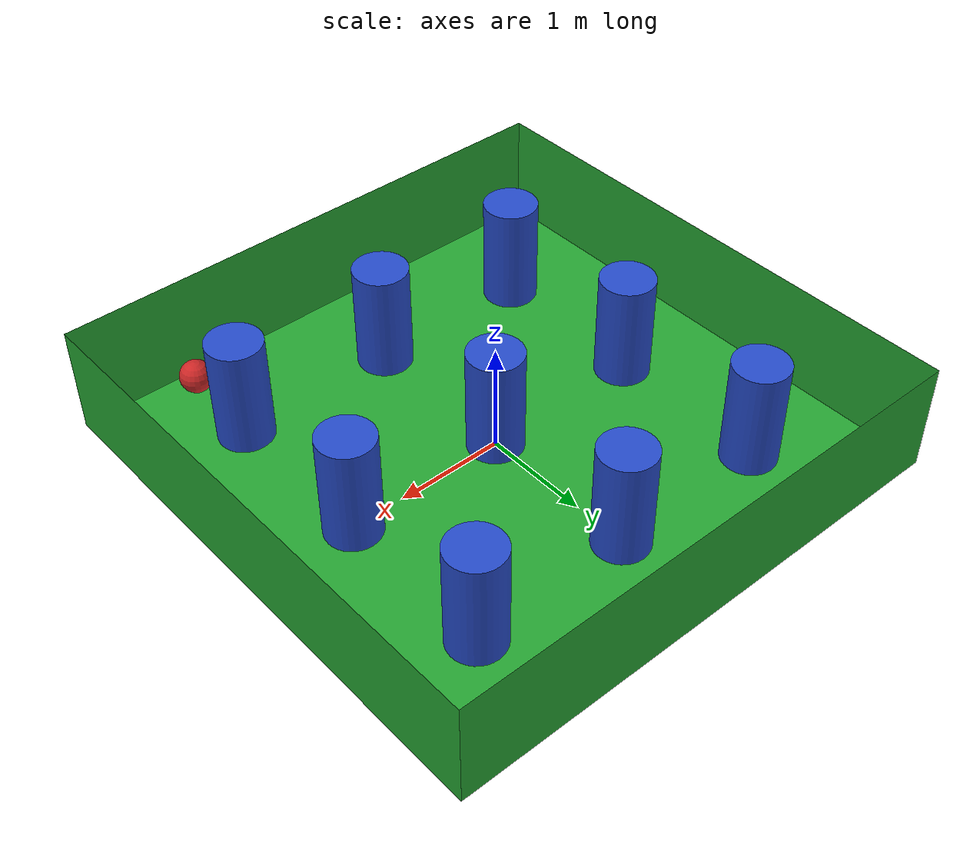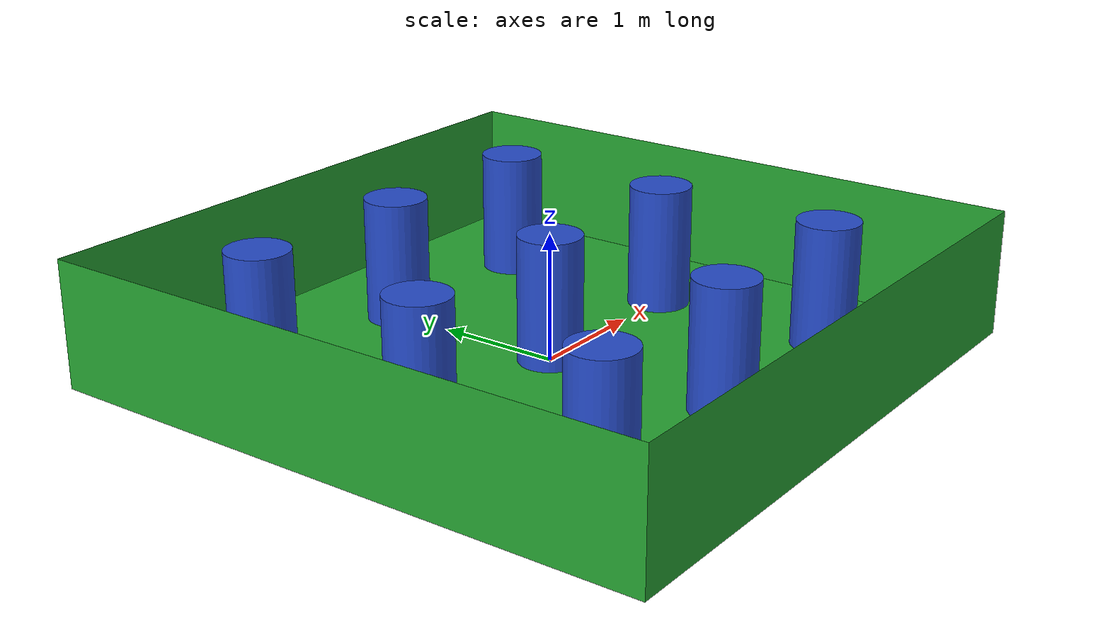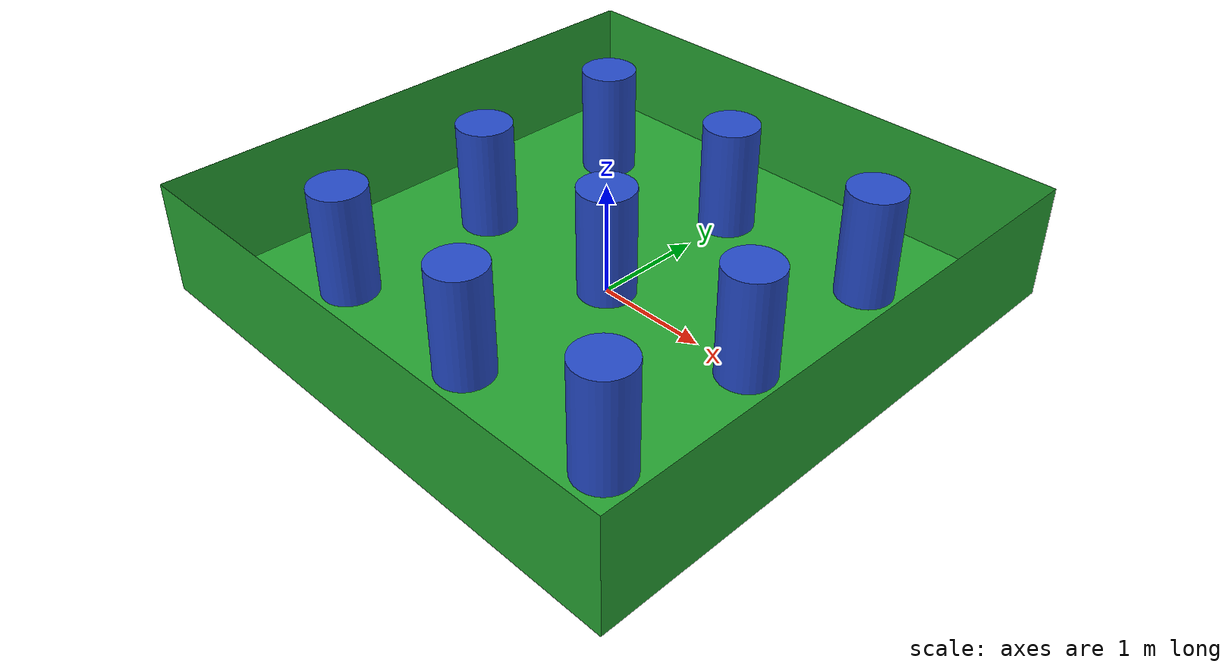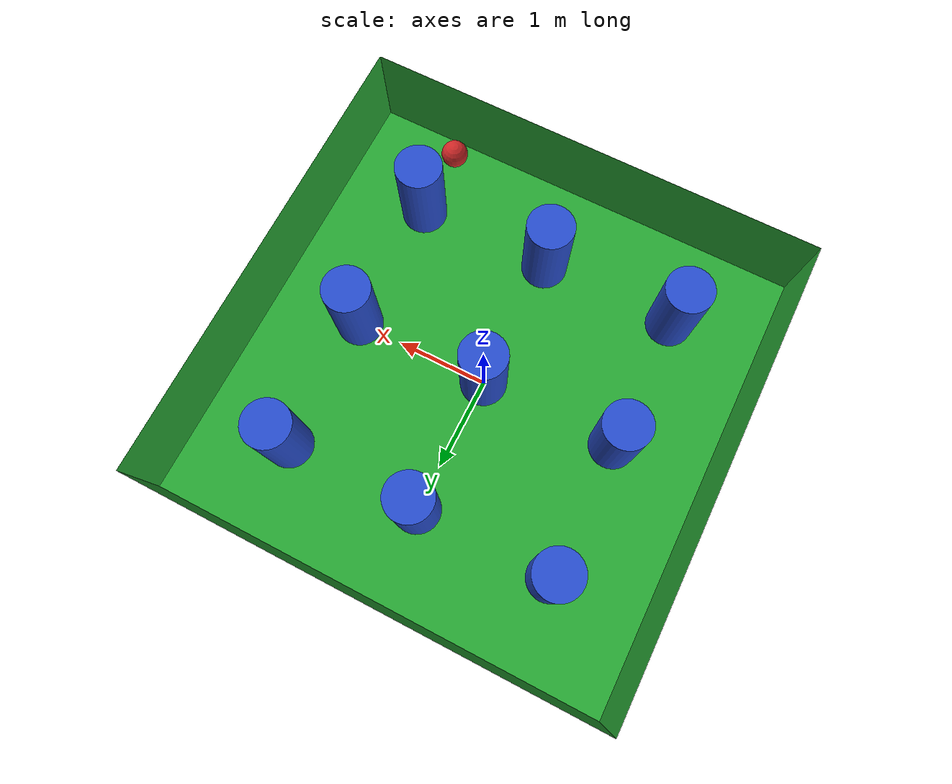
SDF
<?xml version="1.0" ?>
<sdf version="1.4">
  <world name="target_world">

    <!-- Physics settings -->
    <physics type="ode">
      <max_step_size>0.001</max_step_size>
      <real_time_factor>1</real_time_factor>
      <real_time_update_rate>1000</real_time_update_rate>
    </physics>

    <!-- Lighting -->
    <include>
      <uri>model://sun</uri>
    </include>

    <!-- Arena -->
    <include>
      <uri>model://arena</uri>
      <pose>0 0 0 0 0 0</pose>
    </include>

    <!-- Red Ball Target -->
    <include>
      <uri>model://red_ball</uri>
      <name>target_ball_front</name>
      <pose>1.5 -2.25 0.15 0 0 0</pose>
    </include>

    <!-- 3x3 Grid of Obstacles -->
    <!-- Row 1 -->
    <include>
      <uri>model://obstacle</uri>
      <name>obstacle_1_1</name>
      <pose>-1.5 -1.5 0 0 0 0</pose>
    </include>
    <include>
      <uri>model://obstacle</uri>
      <name>obstacle_1_2</name>
      <pose>0 -1.5 0 0 0 0</pose>
    </include>
    <include>
      <uri>model://obstacle</uri>
      <name>obstacle_1_3</name>
      <pose>1.5 -1.5 0 0 0 0</pose>
    </include>

    <!-- Row 2 -->
    <include>
      <uri>model://obstacle</uri>
      <name>obstacle_2_1</name>
      <pose>-1.5 0 0 0 0 0</pose>
    </include>
    <include>
      <uri>model://obstacle</uri>
      <name>obstacle_2_2</name>
      <pose>0 0 0 0 0 0</pose>
    </include>
    <include>
      <uri>model://obstacle</uri>
      <name>obstacle_2_3</name>
      <pose>1.5 0 0 0 0 0</pose>
    </include>

    <!-- Row 3 -->
    <include>
      <uri>model://obstacle</uri>
      <name>obstacle_3_1</name>
      <pose>-1.5 1.5 0 0 0 0</pose>
    </include>
    <include>
      <uri>model://obstacle</uri>
      <name>obstacle_3_2</name>
      <pose>0 1.5 0 0 0 0</pose>
    </include>
    <include>
      <uri>model://obstacle</uri>
      <name>obstacle_3_3</name>
      <pose>1.5 1.5 0 0 0 0</pose>
    </include>

  </world>
</sdf>

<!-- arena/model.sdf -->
<sdf version="1.4">
  <model name="arena">
    <static>true</static>
    <link name="link">
      <visual name="visual">
        <geometry>
          <mesh>
            <uri>model://arena/meshes/arena.dae</uri>
          </mesh>
        </geometry>
        <material>
          <script>
            <name>Gazebo/Green</name>
          </script>
        </material>
      </visual>
      <collision name="collision">
        <geometry>
          <mesh>
            <uri>model://arena/meshes/arena.dae</uri>
          </mesh>
        </geometry>
      </collision>
    </link>
  </model>
</sdf>

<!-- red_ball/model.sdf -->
<sdf version="1.4">
  <model name="red_ball">
    <static>true</static>
    <link name="link">
      <visual name="visual">
        <geometry>
          <sphere>
            <radius>0.15</radius>
          </sphere>
        </geometry>
        <material>
          <script>
            <name>Gazebo/Red</name>
          </script>
        </material>
      </visual>
      <collision name="collision">
        <geometry>
          <sphere>
            <radius>0.15</radius>
          </sphere>
        </geometry>
      </collision>
    </link>
  </model>
</sdf>

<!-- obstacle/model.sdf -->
<sdf version="1.4">
  <model name="obstacle">
    <static>true</static>
    <link name="link">
      <visual name="visual">
        <geometry>
          <mesh>
            <uri>model://obstacle/meshes/obstacle.dae</uri>
          </mesh>
        </geometry>
        <material>
          <script>
            <name>Gazebo/Blue</name>
          </script>
        </material>
      </visual>
      <collision name="collision">
        <geometry>
          <mesh>
            <uri>model://obstacle/meshes/obstacle.dae</uri>
          </mesh>
        </geometry>
      </collision>
    </link>
  </model>
</sdf>
